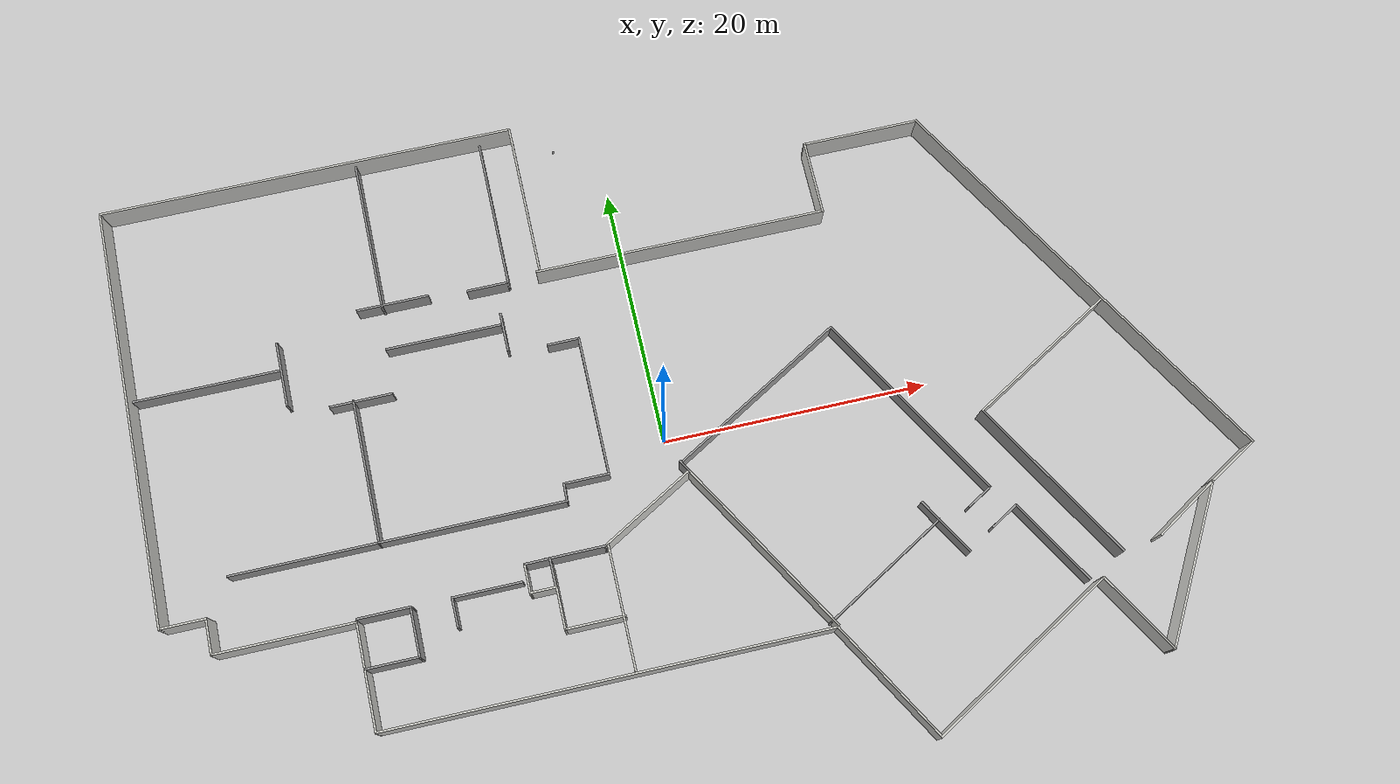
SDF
<sdf version="1.6">
 <world name="default">
  <plugin name="hello" filename="libhello.so"/>
  <light name="sun" type="directional">
   <pose>0 0 10 0 -0 0</pose>
   <diffuse>0.8 0.8 0.8 1</diffuse>
   <specular>0.2 0.2 0.2 1</specular>
   <attenuation>
    <range>1000</range>
    <constant>0.9</constant>
    <linear>0.01</linear>
    <quadratic>0.001</quadratic>
   </attenuation>
   <direction>-0.5 0.1 -0.9</direction>
  </light>
  <model name="ground_plane">
   <static>1</static>
   <link name="link">
    <collision name="collision">
     <geometry><plane><normal>0 0 1</normal><size>100 100</size></plane></geometry>
     <surface>
      <contact><collide_bitmask>65535</collide_bitmask></contact>
      <friction><ode><mu>100</mu><mu2>50</mu2></ode></friction>
     </surface>
    </collision>
    <visual name="visual">
     <cast_shadows>0</cast_shadows>
     <geometry><plane><normal>0 0 1</normal><size>100 100</size></plane></geometry>
     <material>
      <script><uri>file://media/materials/scripts/gazebo.material</uri><name>Gazebo/Grey</name></script>
     </material>
    </visual>
   </link>
  </model>
  <gravity>0 0 -9.8</gravity>
  <magnetic_field>6e-06 2.3e-05 -4.2e-05</magnetic_field>
  <atmosphere type="adiabatic"/>
  <physics name="default_physics" default="0" type="ode">
   <max_step_size>0.001</max_step_size>
   <real_time_factor>1</real_time_factor>
   <real_time_update_rate>1000</real_time_update_rate>
  </physics>
  <scene><ambient>0.4 0.4 0.4 1</ambient><background>0.7 0.7 0.7 1</background><shadows>1</shadows></scene>
  <audio><device>default</device></audio>
  <spherical_coordinates>
   <surface_model>EARTH_WGS84</surface_model>
   <latitude_deg>0</latitude_deg>
   <longitude_deg>0</longitude_deg>
   <elevation>0</elevation>
   <heading_deg>0</heading_deg>
  </spherical_coordinates>
  <model name="2F">
   <pose>1.90054 0.419 0 0 -0 0</pose>
   <link name="Wall_0">
    <collision name="Wall_0_Collision">
     <geometry><box><size>11.75 0.15 2.5</size></box></geometry>
     <pose>0 0 1.25 0 -0 0</pose>
    </collision>
    <visual name="Wall_0_Visual">
     <pose>0 0 1.25 0 -0 0</pose>
     <geometry><box><size>11.75 0.15 2.5</size></box></geometry>
     <material>
      <script><uri>file://media/materials/scripts/gazebo.material</uri><name>Gazebo/CeilingTiled</name></script>
      <ambient>1 1 1 1</ambient>
     </material>
     <meta><layer>0</layer></meta>
    </visual>
    <pose>-8.22709 19.9704 0 0 -0 1.5708</pose>
   </link>
   <link name="Wall_1">
    <collision name="Wall_1_Collision">
     <geometry><box><size>31.75 0.15 2.5</size></box></geometry>
     <pose>0 0 1.25 0 -0 0</pose>
    </collision>
    <visual name="Wall_1_Visual">
     <pose>0 0 1.25 0 -0 0</pose>
     <geometry><box><size>31.75 0.15 2.5</size></box></geometry>
     <material>
      <script><uri>file://media/materials/scripts/gazebo.material</uri><name>Gazebo/CeilingTiled</name></script>
      <ambient>1 1 1 1</ambient>
     </material>
     <meta><layer>0</layer></meta>
    </visual>
    <pose>-24.0271 25.7704 0 0 -0 3.14159</pose>
   </link>
   <link name="Wall_10">
    <collision name="Wall_10_Collision">
     <geometry><box><size>7 0.15 2.5</size></box></geometry>
     <pose>0 0 1.25 0 -0 0</pose>
    </collision>
    <visual name="Wall_10_Visual">
     <pose>0 0 1.25 0 -0 0</pose>
     <geometry><box><size>7 0.15 2.5</size></box></geometry>
     <material>
      <script><uri>file://media/materials/scripts/gazebo.material</uri><name>Gazebo/CeilingTiled</name></script>
      <ambient>1 1 1 1</ambient>
     </material>
     <meta><layer>0</layer></meta>
    </visual>
    <pose>28.0199 -20.5341 0 0 -0 -1.0472</pose>
   </link>
   <link name="Wall_11">
    <collision name="Wall_11_Collision">
     <geometry><box><size>12.75 0.15 2.5</size></box></geometry>
     <pose>0 0 1.25 0 -0 0</pose>
    </collision>
    <visual name="Wall_11_Visual">
     <pose>0 0 1.25 0 -0 0</pose>
     <geometry><box><size>12.75 0.15 2.5</size></box></geometry>
     <material>
      <script><uri>file://media/materials/scripts/gazebo.material</uri><name>Gazebo/CeilingTiled</name></script>
      <ambient>1 1 1 1</ambient>
     </material>
     <meta><layer>0</layer></meta>
    </visual>
    <pose>32.8824 -18.0443 0 0 -0 1.0472</pose>
   </link>
   <link name="Wall_12">
    <collision name="Wall_12_Collision">
     <geometry><box><size>4.5 0.15 2.5</size></box></geometry>
     <pose>0 0 1.25 0 -0 0</pose>
    </collision>
    <visual name="Wall_12_Visual">
     <pose>0 0 1.25 0 -0 0</pose>
     <geometry><box><size>4.5 0.15 2.5</size></box></geometry>
     <material>
      <script><uri>file://media/materials/scripts/gazebo.material</uri><name>Gazebo/CeilingTiled</name></script>
      <ambient>1 1 1 1</ambient>
     </material>
     <meta><layer>0</layer></meta>
    </visual>
    <pose>37.916 -11.5008 0 0 -0 0.523599</pose>
   </link>
   <link name="Wall_13">
    <collision name="Wall_13_Collision">
     <geometry><box><size>34.75 0.15 2.5</size></box></geometry>
     <pose>0 0 1.25 0 -0 0</pose>
    </collision>
    <visual name="Wall_13_Visual">
     <pose>0 0 1.25 0 -0 0</pose>
     <geometry><box><size>34.75 0.15 2.5</size></box></geometry>
     <material>
      <script><uri>file://media/materials/scripts/gazebo.material</uri><name>Gazebo/CeilingTiled</name></script>
      <ambient>1 1 1 1</ambient>
     </material>
     <meta><layer>0</layer></meta>
    </visual>
    <pose>31.1496 4.56893 0 0 -0 2.0944</pose>
   </link>
   <link name="Wall_14">
    <collision name="Wall_14_Collision">
     <geometry><box><size>9 0.15 2.5</size></box></geometry>
     <pose>0 0 1.25 0 -0 0</pose>
    </collision>
    <visual name="Wall_14_Visual">
     <pose>0 0 1.25 0 -0 0</pose>
     <geometry><box><size>9 0.15 2.5</size></box></geometry>
     <material>
      <script><uri>file://media/materials/scripts/gazebo.material</uri><name>Gazebo/CeilingTiled</name></script>
      <ambient>1 1 1 1</ambient>
     </material>
     <meta><layer>0</layer></meta>
    </visual>
    <pose>18.0746 19.5512 0 0 -0 3.14159</pose>
   </link>
   <link name="Wall_15">
    <collision name="Wall_15_Collision">
     <geometry><box><size>5.75 0.15 2.5</size></box></geometry>
     <pose>0 0 1.25 0 -0 0</pose>
    </collision>
    <visual name="Wall_15_Visual">
     <pose>0 0 1.25 0 -0 0</pose>
     <geometry><box><size>5.75 0.15 2.5</size></box></geometry>
     <material>
      <script><uri>file://media/materials/scripts/gazebo.material</uri><name>Gazebo/CeilingTiled</name></script>
      <ambient>1 1 1 1</ambient>
     </material>
     <meta><layer>0</layer></meta>
    </visual>
    <pose>13.6496 16.7512 0 0 -0 -1.5708</pose>
   </link>
   <link name="Wall_16">
    <collision name="Wall_16_Collision">
     <geometry><box><size>22.25 0.15 2.5</size></box></geometry>
     <pose>0 0 1.25 0 -0 0</pose>
    </collision>
    <visual name="Wall_16_Visual">
     <pose>0 0 1.25 0 -0 0</pose>
     <geometry><box><size>22.25 0.15 2.5</size></box></geometry>
     <material>
      <script><uri>file://media/materials/scripts/gazebo.material</uri><name>Gazebo/CeilingTiled</name></script>
      <ambient>1 1 1 1</ambient>
     </material>
     <meta><layer>0</layer></meta>
    </visual>
    <pose>2.59964 13.9512 0 0 -0 3.14159</pose>
   </link>
   <link name="Wall_18">
    <collision name="Wall_18_Collision">
     <geometry><box><size>5.76457 0.15 2.5</size></box></geometry>
     <pose>0 0 1.25 0 -0 0</pose>
    </collision>
    <visual name="Wall_18_Visual">
     <pose>0 0 1.25 0 -0 0</pose>
     <geometry><box><size>5.76457 0.15 2.5</size></box></geometry>
     <material>
      <script><uri>file://media/materials/scripts/gazebo.material</uri><name>Gazebo/CeilingTiled</name></script>
      <ambient>1 1 1 1</ambient>
     </material>
     <meta><layer>0</layer></meta>
    </visual>
    <pose>33.6415 -14.0595 0 0 -0 0.551612</pose>
   </link>
   <link name="Wall_2">
    <collision name="Wall_2_Collision">
     <geometry><box><size>32.25 0.15 2.5</size></box></geometry>
     <pose>0 0 1.25 0 -0 0</pose>
    </collision>
    <visual name="Wall_2_Visual">
     <pose>0 0 1.25 0 -0 0</pose>
     <geometry><box><size>32.25 0.15 2.5</size></box></geometry>
     <material>
      <script><uri>file://media/materials/scripts/gazebo.material</uri><name>Gazebo/CeilingTiled</name></script>
      <ambient>1 1 1 1</ambient>
     </material>
     <meta><layer>0</layer></meta>
    </visual>
    <pose>-39.8271 9.72041 0 0 -0 -1.5708</pose>
   </link>
   <link name="Wall_20">
    <collision name="Wall_20_Collision">
     <geometry><box><size>14.25 0.15 2.5</size></box></geometry>
     <pose>0 0 1.25 0 -0 0</pose>
    </collision>
    <visual name="Wall_20_Visual">
     <pose>0 0 1.25 0 -0 0</pose>
     <geometry><box><size>14.25 0.15 2.5</size></box></geometry>
     <material>
      <script><uri>file://media/materials/scripts/gazebo.material</uri><name>Gazebo/Grey</name></script>
      <ambient>1 1 1 1</ambient>
     </material>
     <meta><layer>0</layer></meta>
    </visual>
    <pose>24.7555 -9.92022 0 0 -0 2.0944</pose>
   </link>
   <link name="Wall_21">
    <collision name="Wall_21_Collision">
     <geometry><box><size>12.75 0.15 2.5</size></box></geometry>
     <pose>0 0 1.25 0 -0 0</pose>
    </collision>
    <visual name="Wall_21_Visual">
     <pose>0 0 1.25 0 -0 0</pose>
     <geometry><box><size>12.75 0.15 2.5</size></box></geometry>
     <material>
      <script><uri>file://media/materials/scripts/gazebo.material</uri><name>Gazebo/CeilingTiled</name></script>
      <ambient>1 1 1 1</ambient>
     </material>
     <meta><layer>0</layer></meta>
    </visual>
    <pose>26.6865 -0.664742 0 0 -0 0.523599</pose>
   </link>
   <link name="Wall_23">
    <collision name="Wall_23_Collision">
     <geometry><box><size>11.75 0.15 1.75</size></box></geometry>
     <pose>0 0 0.875 0 -0 0</pose>
    </collision>
    <visual name="Wall_23_Visual">
     <pose>0 0 0.875 0 -0 0</pose>
     <geometry><box><size>11.75 0.15 1.75</size></box></geometry>
     <material>
      <script><uri>file://media/materials/scripts/gazebo.material</uri><name>Gazebo/Grey</name></script>
      <ambient>0.333333 0.341176 0.32549 1</ambient>
     </material>
     <meta><layer>0</layer></meta>
    </visual>
    <pose>-20.3545 19.88 0 0 -0 -1.5708</pose>
   </link>
   <link name="Wall_25">
    <collision name="Wall_25_Collision">
     <geometry><box><size>5.5 0.15 1.75</size></box></geometry>
     <pose>0 0 0.875 0 -0 0</pose>
    </collision>
    <visual name="Wall_25_Visual">
     <pose>0 0 0.875 0 -0 0</pose>
     <geometry><box><size>5.5 0.15 1.75</size></box></geometry>
     <material>
      <script><uri>file://media/materials/scripts/gazebo.material</uri><name>Gazebo/Grey</name></script>
      <ambient>0.333333 0.341176 0.32549 1</ambient>
     </material>
     <meta><layer>0</layer></meta>
    </visual>
    <pose>-19.5365 14.17 0 0 -0 0</pose>
   </link>
   <link name="Wall_29">
    <collision name="Wall_29_Collision">
     <geometry><box><size>11 0.15 1.75</size></box></geometry>
     <pose>0 0 0.875 0 -0 0</pose>
    </collision>
    <visual name="Wall_29_Visual">
     <pose>0 0 0.875 0 -0 0</pose>
     <geometry><box><size>11 0.15 1.75</size></box></geometry>
     <material>
      <script><uri>file://media/materials/scripts/gazebo.material</uri><name>Gazebo/Grey</name></script>
      <ambient>0.333333 0.341176 0.32549 1</ambient>
     </material>
     <meta><layer>0</layer></meta>
    </visual>
    <pose>-34.1115 10.829 0 0 -0 0</pose>
   </link>
   <link name="Wall_3">
    <collision name="Wall_3_Collision">
     <geometry><box><size>3.5 0.15 2.5</size></box></geometry>
     <pose>0 0 1.25 0 -0 0</pose>
    </collision>
    <visual name="Wall_3_Visual">
     <pose>0 0 1.25 0 -0 0</pose>
     <geometry><box><size>3.5 0.15 2.5</size></box></geometry>
     <material>
      <script><uri>file://media/materials/scripts/gazebo.material</uri><name>Gazebo/CeilingTiled</name></script>
      <ambient>1 1 1 1</ambient>
     </material>
     <meta><layer>0</layer></meta>
    </visual>
    <pose>-38.1521 -6.32959 0 0 -0 0</pose>
   </link>
   <link name="Wall_31">
    <collision name="Wall_31_Collision">
     <geometry><box><size>5 0.15 1.75</size></box></geometry>
     <pose>0 0 0.875 0 -0 0</pose>
    </collision>
    <visual name="Wall_31_Visual">
     <pose>0 0 0.875 0 -0 0</pose>
     <geometry><box><size>5 0.15 1.75</size></box></geometry>
     <material>
      <script><uri>file://media/materials/scripts/gazebo.material</uri><name>Gazebo/Grey</name></script>
      <ambient>0.333333 0.341176 0.32549 1</ambient>
     </material>
     <meta><layer>0</layer></meta>
    </visual>
    <pose>-28.5225 10.508 0 0 -0 -1.5708</pose>
   </link>
   <link name="Wall_33">
    <collision name="Wall_33_Collision">
     <geometry><box><size>25 0.15 1.75</size></box></geometry>
     <pose>0 0 0.875 0 -0 0</pose>
    </collision>
    <visual name="Wall_33_Visual">
     <pose>0 0 0.875 0 -0 0</pose>
     <geometry><box><size>25 0.15 1.75</size></box></geometry>
     <material>
      <script><uri>file://media/materials/scripts/gazebo.material</uri><name>Gazebo/Grey</name></script>
      <ambient>0.333333 0.341176 0.32549 1</ambient>
     </material>
     <meta><layer>0</layer></meta>
    </visual>
    <pose>-22.2855 -3.52698 0 0 -0 0</pose>
   </link>
   <link name="Wall_35">
    <collision name="Wall_35_Collision">
     <geometry><box><size>11 0.15 1.75</size></box></geometry>
     <pose>0 0 0.875 0 -0 0</pose>
    </collision>
    <visual name="Wall_35_Visual">
     <pose>0 0 0.875 0 -0 0</pose>
     <geometry><box><size>11 0.15 1.75</size></box></geometry>
     <material>
      <script><uri>file://media/materials/scripts/gazebo.material</uri><name>Gazebo/Grey</name></script>
      <ambient>0.333333 0.341176 0.32549 1</ambient>
     </material>
     <meta><layer>0</layer></meta>
    </visual>
    <pose>-23.6965 1.89802 0 0 -0 1.5708</pose>
   </link>
   <link name="Wall_37">
    <collision name="Wall_37_Collision">
     <geometry><box><size>4.75 0.15 1.75</size></box></geometry>
     <pose>0 0 0.875 0 -0 0</pose>
    </collision>
    <visual name="Wall_37_Visual">
     <pose>0 0 0.875 0 -0 0</pose>
     <geometry><box><size>4.75 0.15 1.75</size></box></geometry>
     <material>
      <script><uri>file://media/materials/scripts/gazebo.material</uri><name>Gazebo/Grey</name></script>
      <ambient>0.333333 0.341176 0.32549 1</ambient>
     </material>
     <meta><layer>0</layer></meta>
    </visual>
    <pose>-23.1285 7.24002 0 0 -0 0</pose>
   </link>
   <link name="Wall_39">
    <collision name="Wall_39_Collision">
     <geometry><box><size>8.75 0.15 1.75</size></box></geometry>
     <pose>0 0 0.875 0 -0 0</pose>
    </collision>
    <visual name="Wall_39_Visual">
     <pose>0 0 0.875 0 -0 0</pose>
     <geometry><box><size>8.75 0.15 1.75</size></box></geometry>
     <material>
      <script><uri>file://media/materials/scripts/gazebo.material</uri><name>Gazebo/Grey</name></script>
      <ambient>0.333333 0.341176 0.32549 1</ambient>
     </material>
     <meta><layer>0</layer></meta>
    </visual>
    <pose>-16.3025 10.705 0 0 -0 0</pose>
   </link>
   <link name="Wall_4">
    <collision name="Wall_4_Collision">
     <geometry><box><size>2.75 0.15 2.5</size></box></geometry>
     <pose>0 0 1.25 0 -0 0</pose>
    </collision>
    <visual name="Wall_4_Visual">
     <pose>0 0 1.25 0 -0 0</pose>
     <geometry><box><size>2.75 0.15 2.5</size></box></geometry>
     <material>
      <script><uri>file://media/materials/scripts/gazebo.material</uri><name>Gazebo/CeilingTiled</name></script>
      <ambient>1 1 1 1</ambient>
     </material>
     <meta><layer>0</layer></meta>
    </visual>
    <pose>-36.4771 -7.62959 0 0 -0 -1.5708</pose>
   </link>
   <link name="Wall_41">
    <collision name="Wall_41_Collision">
     <geometry><box><size>3 0.15 1.75</size></box></geometry>
     <pose>0 0 0.875 0 -0 0</pose>
    </collision>
    <visual name="Wall_41_Visual">
     <pose>0 0 0.875 0 -0 0</pose>
     <geometry><box><size>3 0.15 1.75</size></box></geometry>
     <material>
      <script><uri>file://media/materials/scripts/gazebo.material</uri><name>Gazebo/Grey</name></script>
      <ambient>0.333333 0.341176 0.32549 1</ambient>
     </material>
     <meta><layer>0</layer></meta>
    </visual>
    <pose>-11.7981 10.1118 0 0 -0 -1.5708</pose>
   </link>
   <link name="Wall_43">
    <collision name="Wall_43_Collision">
     <geometry><box><size>5.25 0.15 1.75</size></box></geometry>
     <pose>0 0 0.875 0 -0 0</pose>
    </collision>
    <visual name="Wall_43_Visual">
     <pose>0 0 0.875 0 -0 0</pose>
     <geometry><box><size>5.25 0.15 1.75</size></box></geometry>
     <material>
      <script><uri>file://media/materials/scripts/gazebo.material</uri><name>Gazebo/Grey</name></script>
      <ambient>0.333333 0.341176 0.32549 1</ambient>
     </material>
     <meta><layer>0</layer></meta>
    </visual>
    <pose>-16.7475 -8.59798 0 0 -0 0</pose>
   </link>
   <link name="Wall_45">
    <collision name="Wall_45_Collision">
     <geometry><box><size>4.5 0.15 2.5</size></box></geometry>
     <pose>0 0 1.25 0 -0 0</pose>
    </collision>
    <visual name="Wall_45_Visual">
     <pose>0 0 1.25 0 -0 0</pose>
     <geometry><box><size>4.5 0.15 2.5</size></box></geometry>
     <material>
      <script><uri>file://media/materials/scripts/gazebo.material</uri><name>Gazebo/Grey</name></script>
      <ambient>1 1 1 1</ambient>
     </material>
     <meta><layer>0</layer></meta>
    </visual>
    <pose>-10.0063 -7.49654 0 0 -0 0</pose>
   </link>
   <link name="Wall_46">
    <collision name="Wall_46_Collision">
     <geometry><box><size>8.31248 0.15 2.5</size></box></geometry>
     <pose>0 0 1.25 0 -0 0</pose>
    </collision>
    <visual name="Wall_46_Visual">
     <pose>0 0 1.25 0 -0 0</pose>
     <geometry><box><size>8.31248 0.15 2.5</size></box></geometry>
     <material>
      <script><uri>file://media/materials/scripts/gazebo.material</uri><name>Gazebo/CeilingTiled</name></script>
      <ambient>1 1 1 1</ambient>
     </material>
     <meta><layer>0</layer></meta>
    </visual>
    <pose>-4.28713 -5.47286 0 0 -0 0.518813</pose>
   </link>
   <link name="Wall_47">
    <collision name="Wall_47_Collision">
     <geometry><box><size>15.4966 0.15 2.5</size></box></geometry>
     <pose>0 0 1.25 0 -0 0</pose>
    </collision>
    <visual name="Wall_47_Visual">
     <pose>0 0 1.25 0 -0 0</pose>
     <geometry><box><size>15.4966 0.15 2.5</size></box></geometry>
     <material>
      <script><uri>file://media/materials/scripts/gazebo.material</uri><name>Gazebo/CeilingTiled</name></script>
      <ambient>1 1 1 1</ambient>
     </material>
     <meta><layer>0</layer></meta>
    </visual>
    <pose>3.17048 -10.0495 0 0 -0 -1.03561</pose>
   </link>
   <link name="Wall_49">
    <collision name="Wall_49_Collision">
     <geometry><box><size>5 0.15 1.75</size></box></geometry>
     <pose>0 0 0.875 0 -0 0</pose>
    </collision>
    <visual name="Wall_49_Visual">
     <pose>0 0 0.875 0 -0 0</pose>
     <geometry><box><size>5 0.15 1.75</size></box></geometry>
     <material>
      <script><uri>file://media/materials/scripts/gazebo.material</uri><name>Gazebo/Grey</name></script>
      <ambient>0.333333 0.341176 0.32549 1</ambient>
     </material>
     <meta><layer>0</layer></meta>
    </visual>
    <pose>16.499 -11.443 0 0 -0 -1.04717</pose>
   </link>
   <link name="Wall_5">
    <collision name="Wall_5_Collision">
     <geometry><box><size>10.5 0.15 2.5</size></box></geometry>
     <pose>0 0 1.25 0 -0 0</pose>
    </collision>
    <visual name="Wall_5_Visual">
     <pose>0 0 1.25 0 -0 0</pose>
     <geometry><box><size>10.5 0.15 2.5</size></box></geometry>
     <material>
      <script><uri>file://media/materials/scripts/gazebo.material</uri><name>Gazebo/CeilingTiled</name></script>
      <ambient>1 1 1 1</ambient>
     </material>
     <meta><layer>0</layer></meta>
    </visual>
    <pose>-31.3021 -8.92959 0 0 -0 0</pose>
   </link>
   <link name="Wall_51">
    <collision name="Wall_51_Collision">
     <geometry><box><size>11 0.15 1.75</size></box></geometry>
     <pose>0 0 0.875 0 -0 0</pose>
    </collision>
    <visual name="Wall_51_Visual">
     <pose>0 0 0.875 0 -0 0</pose>
     <geometry><box><size>11 0.15 1.75</size></box></geometry>
     <material>
      <script><uri>file://media/materials/scripts/gazebo.material</uri><name>Gazebo/Grey</name></script>
      <ambient>0.333333 0.341176 0.32549 1</ambient>
     </material>
     <meta><layer>0</layer></meta>
    </visual>
    <pose>11.4545 -13.5405 0 0 -0 -2.61798</pose>
   </link>
   <link name="Wall_55">
    <collision name="Wall_55_Collision">
     <geometry><box><size>15.5 0.15 1.75</size></box></geometry>
     <pose>0 0 0.875 0 -0 0</pose>
    </collision>
    <visual name="Wall_55_Visual">
     <pose>0 0 0.875 0 -0 0</pose>
     <geometry><box><size>15.5 0.15 1.75</size></box></geometry>
     <material>
      <script><uri>file://media/materials/scripts/gazebo.material</uri><name>Gazebo/Grey</name></script>
      <ambient>0.333333 0.341176 0.32549 1</ambient>
     </material>
     <meta><layer>0</layer></meta>
    </visual>
    <pose>5.43846 1.21252 0 0 -0 0.523582</pose>
   </link>
   <link name="Wall_56">
    <collision name="Wall_56_Collision">
     <geometry><box><size>16.75 0.15 1.75</size></box></geometry>
     <pose>0 0 0.875 0 -0 0</pose>
    </collision>
    <visual name="Wall_56_Visual">
     <pose>0 0 0.875 0 -0 0</pose>
     <geometry><box><size>16.75 0.15 1.75</size></box></geometry>
     <material>
      <script><uri>file://media/materials/scripts/gazebo.material</uri><name>Gazebo/Grey</name></script>
      <ambient>0.333333 0.341176 0.32549 1</ambient>
     </material>
     <meta><layer>0</layer></meta>
    </visual>
    <pose>16.2355 -2.13798 0 0 -0 -1.0472</pose>
   </link>
   <link name="Wall_59">
    <collision name="Wall_59_Collision">
     <geometry><box><size>7.5 0.15 1.75</size></box></geometry>
     <pose>0 0 0.875 0 -0 0</pose>
    </collision>
    <visual name="Wall_59_Visual">
     <pose>0 0 0.875 0 -0 0</pose>
     <geometry><box><size>7.5 0.15 1.75</size></box></geometry>
     <material>
      <script><uri>file://media/materials/scripts/gazebo.material</uri><name>Gazebo/Grey</name></script>
      <ambient>0.333333 0.341176 0.32549 1</ambient>
     </material>
     <meta><layer>0</layer></meta>
    </visual>
    <pose>23.72 -14.2045 0 0 -0 2.09442</pose>
   </link>
   <link name="Wall_6">
    <collision name="Wall_6_Collision">
     <geometry><box><size>8 0.15 2.5</size></box></geometry>
     <pose>0 0 1.25 0 -0 0</pose>
    </collision>
    <visual name="Wall_6_Visual">
     <pose>0 0 1.25 0 -0 0</pose>
     <geometry><box><size>8 0.15 2.5</size></box></geometry>
     <material>
      <script><uri>file://media/materials/scripts/gazebo.material</uri><name>Gazebo/CeilingTiled</name></script>
      <ambient>1 1 1 1</ambient>
     </material>
     <meta><layer>0</layer></meta>
    </visual>
    <pose>-26.1271 -12.8546 0 0 -0 -1.5708</pose>
   </link>
   <link name="Wall_61">
    <collision name="Wall_61_Collision">
     <geometry><box><size>9.25 0.15 2.5</size></box></geometry>
     <pose>0 0 1.25 0 -0 0</pose>
    </collision>
    <visual name="Wall_61_Visual">
     <pose>0 0 1.25 0 -0 0</pose>
     <geometry><box><size>9.25 0.15 2.5</size></box></geometry>
     <material>
      <script><uri>file://media/materials/scripts/gazebo.material</uri><name>Gazebo/CeilingTiled</name></script>
      <ambient>1 1 1 1</ambient>
     </material>
     <meta><layer>0</layer></meta>
    </visual>
    <pose>-7.60832 -12.0366 0 0 -0 -1.5708</pose>
   </link>
   <link name="Wall_63">
    <collision name="Wall_63_Collision">
     <geometry><box><size>4.5 0.15 2.5</size></box></geometry>
     <pose>0 0 1.25 0 -0 0</pose>
    </collision>
    <visual name="Wall_63_Visual">
     <pose>0 0 1.25 0 -0 0</pose>
     <geometry><box><size>4.5 0.15 2.5</size></box></geometry>
     <material>
      <script><uri>file://media/materials/scripts/gazebo.material</uri><name>Gazebo/CeilingTiled</name></script>
      <ambient>1 1 1 1</ambient>
     </material>
     <meta><layer>0</layer></meta>
    </visual>
    <pose>-9.65956 -12.6843 0 0 -0 3.14159</pose>
   </link>
   <link name="Wall_64">
    <collision name="Wall_64_Collision">
     <geometry><box><size>4.75 0.15 2.5</size></box></geometry>
     <pose>0 0 1.25 0 -0 0</pose>
    </collision>
    <visual name="Wall_64_Visual">
     <pose>0 0 1.25 0 -0 0</pose>
     <geometry><box><size>4.75 0.15 2.5</size></box></geometry>
     <material>
      <script><uri>file://media/materials/scripts/gazebo.material</uri><name>Gazebo/CeilingTiled</name></script>
      <ambient>1 1 1 1</ambient>
     </material>
     <meta><layer>0</layer></meta>
    </visual>
    <pose>-11.8346 -10.3843 0 0 -0 1.5708</pose>
   </link>
   <link name="Wall_66">
    <collision name="Wall_66_Collision">
     <geometry><box><size>3.25 0.15 1.75</size></box></geometry>
     <pose>0 0 0.875 0 -0 0</pose>
    </collision>
    <visual name="Wall_66_Visual">
     <pose>0 0 0.875 0 -0 0</pose>
     <geometry><box><size>3.25 0.15 1.75</size></box></geometry>
     <material>
      <script><uri>file://media/materials/scripts/gazebo.material</uri><name>Gazebo/Grey</name></script>
      <ambient>0.333333 0.341176 0.32549 1</ambient>
     </material>
     <meta><layer>0</layer></meta>
    </visual>
    <pose>-12.2935 13.874 0 0 -0 0</pose>
   </link>
   <link name="Wall_67">
    <collision name="Wall_67_Collision">
     <geometry><box><size>11.5 0.15 1.75</size></box></geometry>
     <pose>0 0 0.875 0 -0 0</pose>
    </collision>
    <visual name="Wall_67_Visual">
     <pose>0 0 0.875 0 -0 0</pose>
     <geometry><box><size>11.5 0.15 1.75</size></box></geometry>
     <material>
      <script><uri>file://media/materials/scripts/gazebo.material</uri><name>Gazebo/Grey</name></script>
      <ambient>0.333333 0.341176 0.32549 1</ambient>
     </material>
     <meta><layer>0</layer></meta>
    </visual>
    <pose>-10.7435 19.549 0 0 -0 1.5708</pose>
   </link>
   <link name="Wall_69">
    <collision name="Wall_69_Collision">
     <geometry><box><size>2.25 0.15 2.5</size></box></geometry>
     <pose>0 0 1.25 0 -0 0</pose>
    </collision>
    <visual name="Wall_69_Visual">
     <pose>0 0 1.25 0 -0 0</pose>
     <geometry><box><size>2.25 0.15 2.5</size></box></geometry>
     <material>
      <script><uri>file://media/materials/scripts/gazebo.material</uri><name>Gazebo/CeilingTiled</name></script>
      <ambient>1 1 1 1</ambient>
     </material>
     <meta><layer>0</layer></meta>
    </visual>
    <pose>-13.7381 -8.56438 0 0 -0 -1.5708</pose>
   </link>
   <link name="Wall_7">
    <collision name="Wall_7_Collision">
     <geometry><box><size>33.25 0.15 2.5</size></box></geometry>
     <pose>0 0 1.25 0 -0 0</pose>
    </collision>
    <visual name="Wall_7_Visual">
     <pose>0 0 1.25 0 -0 0</pose>
     <geometry><box><size>33.25 0.15 2.5</size></box></geometry>
     <material>
      <script><uri>file://media/materials/scripts/gazebo.material</uri><name>Gazebo/CeilingTiled</name></script>
      <ambient>1 1 1 1</ambient>
     </material>
     <meta><layer>0</layer></meta>
    </visual>
    <pose>-9.57709 -16.7796 0 0 -0 0</pose>
   </link>
   <link name="Wall_70">
    <collision name="Wall_70_Collision">
     <geometry><box><size>2 0.15 2.5</size></box></geometry>
     <pose>0 0 1.25 0 -0 0</pose>
    </collision>
    <visual name="Wall_70_Visual">
     <pose>0 0 1.25 0 -0 0</pose>
     <geometry><box><size>2 0.15 2.5</size></box></geometry>
     <material>
      <script><uri>file://media/materials/scripts/gazebo.material</uri><name>Gazebo/CeilingTiled</name></script>
      <ambient>1 1 1 1</ambient>
     </material>
     <meta><layer>0</layer></meta>
    </visual>
    <pose>-12.8131 -9.61438 0 0 -0 0</pose>
   </link>
   <link name="Wall_72">
    <collision name="Wall_72_Collision">
     <geometry><box><size>2 0.15 2.5</size></box></geometry>
     <pose>0 0 1.25 0 -0 0</pose>
    </collision>
    <visual name="Wall_72_Visual">
     <pose>0 0 1.25 0 -0 0</pose>
     <geometry><box><size>2 0.15 2.5</size></box></geometry>
     <material>
      <script><uri>file://media/materials/scripts/gazebo.material</uri><name>Gazebo/Grey</name></script>
      <ambient>1 1 1 1</ambient>
     </material>
     <meta><layer>0</layer></meta>
    </visual>
    <pose>-12.8131 -7.51438 0 0 -0 0</pose>
   </link>
   <link name="Wall_73">
    <collision name="Wall_73_Collision">
     <geometry><box><size>2.25 0.15 2.5</size></box></geometry>
     <pose>0 0 1.25 0 -0 0</pose>
    </collision>
    <visual name="Wall_73_Visual">
     <pose>0 0 1.25 0 -0 0</pose>
     <geometry><box><size>2.25 0.15 2.5</size></box></geometry>
     <material>
      <script><uri>file://media/materials/scripts/gazebo.material</uri><name>Gazebo/Grey</name></script>
      <ambient>1 1 1 1</ambient>
     </material>
     <meta><layer>0</layer></meta>
    </visual>
    <pose>-11.8881 -8.56438 0 0 -0 -1.5708</pose>
   </link>
   <link name="Wall_75">
    <collision name="Wall_75_Collision">
     <geometry><box><size>2.27877 0.15 1.75</size></box></geometry>
     <pose>0 0 0.875 0 -0 0</pose>
    </collision>
    <visual name="Wall_75_Visual">
     <pose>0 0 0.875 0 -0 0</pose>
     <geometry><box><size>2.27877 0.15 1.75</size></box></geometry>
     <material>
      <script><uri>file://media/materials/scripts/gazebo.material</uri><name>Gazebo/Grey</name></script>
      <ambient>0.333333 0.341176 0.32549 1</ambient>
     </material>
     <meta><layer>0</layer></meta>
    </visual>
    <pose>-19.286 -9.66198 0 0 -0 1.5816</pose>
   </link>
   <link name="Wall_8">
    <collision name="Wall_8_Collision">
     <geometry><box><size>10.5 0.15 2.5</size></box></geometry>
     <pose>0 0 1.25 0 -0 0</pose>
    </collision>
    <visual name="Wall_8_Visual">
     <pose>0 0 1.25 0 -0 0</pose>
     <geometry><box><size>10.5 0.15 2.5</size></box></geometry>
     <material>
      <script><uri>file://media/materials/scripts/gazebo.material</uri><name>Gazebo/CeilingTiled</name></script>
      <ambient>1 1 1 1</ambient>
     </material>
     <meta><layer>0</layer></meta>
    </visual>
    <pose>9.56041 -21.2613 0 0 -0 -1.0472</pose>
   </link>
   <link name="Wall_80">
    <collision name="Wall_80_Collision">
     <geometry><box><size>4 0.15 2.5</size></box></geometry>
     <pose>0 0 1.25 0 -0 0</pose>
    </collision>
    <visual name="Wall_80_Visual">
     <pose>0 0 1.25 0 -0 0</pose>
     <geometry><box><size>4 0.15 2.5</size></box></geometry>
     <material>
      <script><uri>file://media/materials/scripts/gazebo.material</uri><name>Gazebo/Grey</name></script>
      <ambient>0.729412 0.741176 0.713726 1</ambient>
     </material>
     <meta><layer>0</layer></meta>
    </visual>
    <pose>-24.141 -12.317 0 0 -0 0</pose>
   </link>
   <link name="Wall_81">
    <collision name="Wall_81_Collision">
     <geometry><box><size>3.75 0.15 2.5</size></box></geometry>
     <pose>0 0 1.25 0 -0 0</pose>
    </collision>
    <visual name="Wall_81_Visual">
     <pose>0 0 1.25 0 -0 0</pose>
     <geometry><box><size>3.75 0.15 2.5</size></box></geometry>
     <material>
      <script><uri>file://media/materials/scripts/gazebo.material</uri><name>Gazebo/Grey</name></script>
      <ambient>1 1 1 1</ambient>
     </material>
     <meta><layer>0</layer></meta>
    </visual>
    <pose>-22.216 -10.517 0 0 -0 1.5708</pose>
   </link>
   <link name="Wall_82">
    <collision name="Wall_82_Collision">
     <geometry><box><size>4 0.15 2.5</size></box></geometry>
     <pose>0 0 1.25 0 -0 0</pose>
    </collision>
    <visual name="Wall_82_Visual">
     <pose>0 0 1.25 0 -0 0</pose>
     <geometry><box><size>4 0.15 2.5</size></box></geometry>
     <material>
      <script><uri>file://media/materials/scripts/gazebo.material</uri><name>Gazebo/Grey</name></script>
      <ambient>1 1 1 1</ambient>
     </material>
     <meta><layer>0</layer></meta>
    </visual>
    <pose>-24.141 -8.71705 0 0 -0 3.14159</pose>
   </link>
   <link name="Wall_84">
    <collision name="Wall_84_Collision">
     <geometry><box><size>10.75 0.15 1.75</size></box></geometry>
     <pose>0 0 0.875 0 -0 0</pose>
    </collision>
    <visual name="Wall_84_Visual">
     <pose>0 0 0.875 0 -0 0</pose>
     <geometry><box><size>10.75 0.15 1.75</size></box></geometry>
     <material>
      <script><uri>file://media/materials/scripts/gazebo.material</uri><name>Gazebo/Grey</name></script>
      <ambient>0.333333 0.341176 0.32549 1</ambient>
     </material>
     <meta><layer>0</layer></meta>
    </visual>
    <pose>-6.45754 3.07802 0 0 -0 1.5708</pose>
   </link>
   <link name="Wall_85">
    <collision name="Wall_85_Collision">
     <geometry><box><size>2.5 0.15 1.75</size></box></geometry>
     <pose>0 0 0.875 0 -0 0</pose>
    </collision>
    <visual name="Wall_85_Visual">
     <pose>0 0 0.875 0 -0 0</pose>
     <geometry><box><size>2.5 0.15 1.75</size></box></geometry>
     <material>
      <script><uri>file://media/materials/scripts/gazebo.material</uri><name>Gazebo/Grey</name></script>
      <ambient>0.333333 0.341176 0.32549 1</ambient>
     </material>
     <meta><layer>0</layer></meta>
    </visual>
    <pose>-7.63254 8.37802 0 0 -0 3.14159</pose>
   </link>
   <link name="Wall_87">
    <collision name="Wall_87_Collision">
     <geometry><box><size>1.09659 0.15 2.5</size></box></geometry>
     <pose>0 0 1.25 0 -0 0</pose>
    </collision>
    <visual name="Wall_87_Visual">
     <pose>0 0 1.25 0 -0 0</pose>
     <geometry><box><size>1.09659 0.15 2.5</size></box></geometry>
     <material>
      <script><uri>file://media/materials/scripts/gazebo.material</uri><name>Gazebo/Grey</name></script>
      <ambient>1 1 1 1</ambient>
     </material>
     <meta><layer>0</layer></meta>
    </visual>
    <pose>-0.975741 -3.03708 0 0 -0 -1.05658</pose>
   </link>
   <link name="Wall_89">
    <collision name="Wall_89_Collision">
     <geometry><box><size>2.5 0.15 1.75</size></box></geometry>
     <pose>0 0 0.875 0 -0 0</pose>
    </collision>
    <visual name="Wall_89_Visual">
     <pose>0 0 0.875 0 -0 0</pose>
     <geometry><box><size>2.5 0.15 1.75</size></box></geometry>
     <material>
      <script><uri>file://media/materials/scripts/gazebo.material</uri><name>Gazebo/Grey</name></script>
      <ambient>0.333333 0.341176 0.32549 1</ambient>
     </material>
     <meta><layer>0</layer></meta>
    </visual>
    <pose>20.865 -11.6095 0 0 -0 -2.61796</pose>
   </link>
   <link name="Wall_9">
    <collision name="Wall_9_Collision">
     <geometry><box><size>16.5 0.15 2.5</size></box></geometry>
     <pose>0 0 1.25 0 -0 0</pose>
    </collision>
    <visual name="Wall_9_Visual">
     <pose>0 0 1.25 0 -0 0</pose>
     <geometry><box><size>16.5 0.15 2.5</size></box></geometry>
     <material>
      <script><uri>file://media/materials/scripts/gazebo.material</uri><name>Gazebo/CeilingTiled</name></script>
      <ambient>1 1 1 1</ambient>
     </material>
     <meta><layer>0</layer></meta>
    </visual>
    <pose>19.2277 -21.6555 0 0 -0 0.523599</pose>
   </link>
   <link name="Wall_91">
    <collision name="Wall_91_Collision">
     <geometry><box><size>2.25 0.15 1.75</size></box></geometry>
     <pose>0 0 0.875 0 -0 0</pose>
    </collision>
    <visual name="Wall_91_Visual">
     <pose>0 0 0.875 0 -0 0</pose>
     <geometry><box><size>2.25 0.15 1.75</size></box></geometry>
     <material>
      <script><uri>file://media/materials/scripts/gazebo.material</uri><name>Gazebo/Grey</name></script>
      <ambient>0.333333 0.341176 0.32549 1</ambient>
     </material>
     <meta><layer>0</layer></meta>
    </visual>
    <pose>19.476 -9.85098 0 0 -0 -2.61808</pose>
   </link>
   <link name="Wall_93">
    <collision name="Wall_93_Collision">
     <geometry><box><size>3.5 0.15 1.75</size></box></geometry>
     <pose>0 0 0.875 0 -0 0</pose>
    </collision>
    <visual name="Wall_93_Visual">
     <pose>0 0 0.875 0 -0 0</pose>
     <geometry><box><size>3.5 0.15 1.75</size></box></geometry>
     <material>
      <script><uri>file://media/materials/scripts/gazebo.material</uri><name>Gazebo/Grey</name></script>
      <ambient>0.333333 0.341176 0.32549 1</ambient>
     </material>
     <meta><layer>0</layer></meta>
    </visual>
    <pose>-8.13254 -2.22198 0 0 -0 3.14159</pose>
   </link>
   <link name="Wall_96">
    <collision name="Wall_96_Collision">
     <geometry><box><size>1.45608 0.15 1.75</size></box></geometry>
     <pose>0 0 0.875 0 -0 0</pose>
    </collision>
    <visual name="Wall_96_Visual">
     <pose>0 0 0.875 0 -0 0</pose>
     <geometry><box><size>1.45608 0.15 1.75</size></box></geometry>
     <material>
      <script><uri>file://media/materials/scripts/gazebo.material</uri><name>Gazebo/Grey</name></script>
      <ambient>0.333333 0.341176 0.32549 1</ambient>
     </material>
     <meta><layer>0</layer></meta>
    </visual>
    <pose>-9.83404 -2.87448 0 0 -0 -1.61139</pose>
   </link>
   <static>1</static>
  </model>
  <model name="my_ball">
   <link name="link_0">
    <inertial>
     <mass>1</mass>
     <inertia><ixx>0.1</ixx><ixy>0</ixy><ixz>0</ixz><iyy>0.1</iyy><iyz>0</iyz><izz>0.1</izz></inertia>
    </inertial>
    <visual name="visual">
     <geometry><sphere><radius>0.1</radius></sphere></geometry>
     <material>
      <lighting>1</lighting>
      <script><uri>file://media/materials/scripts/gazebo.material</uri><name>Gazebo/Grey</name></script>
      <ambient>1 1 1 1</ambient>
      <shader type="vertex"><normal_map>__default__</normal_map></shader>
      <diffuse>1 1 1 1</diffuse>
      <specular>1 1 1 1</specular>
      <emissive>1 1 1 1</emissive>
     </material>
    </visual>
    <collision name="collision">
     <geometry><sphere><radius>0.1</radius></sphere></geometry>
     <surface>
      <friction>
       <ode><mu>1</mu><mu2>1</mu2><fdir1>0 0 0</fdir1><slip1>0</slip1><slip2>0</slip2></ode>
       <torsional>
        <coefficient>1</coefficient>
        <patch_radius>0</patch_radius>
        <surface_radius>0</surface_radius>
        <use_patch_radius>1</use_patch_radius>
        <ode><slip>0</slip></ode>
       </torsional>
      </friction>
      <bounce><restitution_coefficient>0</restitution_coefficient><threshold>1e+06</threshold></bounce>
      <contact>
       <collide_without_contact>0</collide_without_contact>
       <collide_without_contact_bitmask>1</collide_without_contact_bitmask>
       <collide_bitmask>1</collide_bitmask>
       <ode>
        <soft_cfm>0</soft_cfm>
        <soft_erp>0.2</soft_erp>
        <kp>1e+13</kp>
        <kd>1</kd>
        <max_vel>0.01</max_vel>
        <min_depth>0</min_depth>
       </ode>
       <bullet>
        <split_impulse>1</split_impulse>
        <split_impulse_penetration_threshold>-0.01</split_impulse_penetration_threshold>
        <soft_cfm>0</soft_cfm>
        <soft_erp>0.2</soft_erp>
        <kp>1e+13</kp>
        <kd>1</kd>
       </bullet>
      </contact>
     </surface>
    </collision>
   </link>
   <static>0</static>
   <pose>-3.35872 24.6118 0.1 0 -0 0</pose>
  </model>
 </world>
</sdf>
